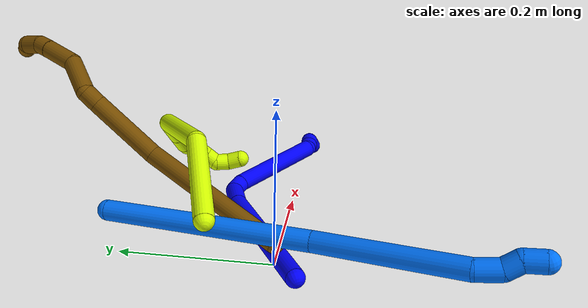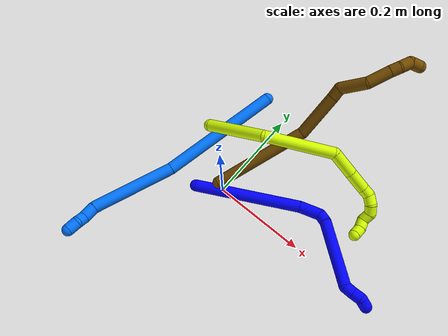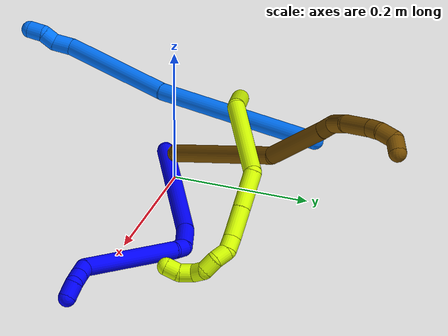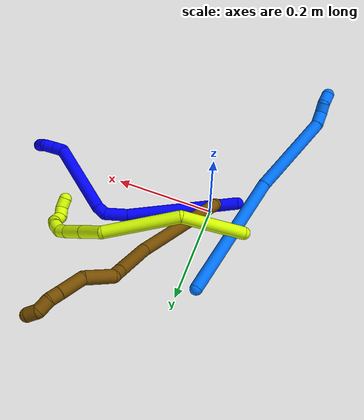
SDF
<sdf version="1.7">
 <world name="default">
  <model name="photoneo_s_sensor">
   <static>1</static>
   <pose>0 0 2 1.57079 1.57079 3.14159</pose>
   <link name="link">
    <inertial><mass>0.1</mass></inertial>
    <sensor name="sensor" type="depth">
     <update_rate>30</update_rate>
     <camera>
      <horizontal_fov>1.22</horizontal_fov>
      <image><width>1920</width><height>1200</height><format>B8G8R8</format></image>
      <clip><near>0.1</near><far>4</far></clip>
      <depth_camera><output>points</output></depth_camera>
     </camera>
     <plugin name="camera_plugin" filename="libgazebo_ros_depth_camera.so">
      <baseline>0.2</baseline>
      <alwaysOn>1</alwaysOn>
      <updateRate>0.0</updateRate>
      <cameraName>camera_ir</cameraName>
      <imageTopicName>/camera/color/image_raw</imageTopicName>
      <cameraInfoTopicName>/camera/color/camera_info</cameraInfoTopicName>
      <depthImageTopicName>/camera/depth/image_raw</depthImageTopicName>
      <depthImageCameraInfoTopicName>/camera/depth/camera_info</depthImageCameraInfoTopicName>
      <pointCloudTopicName>/camera/depth/points</pointCloudTopicName>
      <frameName>fr_optical</frameName>
      <pointCloudCutoff>0.1</pointCloudCutoff>
      <pointCloudCutoffMax>2.0</pointCloudCutoffMax>
      <distortionK1>0</distortionK1>
      <distortionK2>0</distortionK2>
      <distortionK3>0</distortionK3>
      <distortionT1>0</distortionT1>
      <distortionT2>0</distortionT2>
      <CxPrime>0</CxPrime>
      <Cx>0</Cx>
      <Cy>0</Cy>
      <focalLength>0</focalLength>
      <hackBaseline>0</hackBaseline>
     </plugin>
    </sensor>
   </link>
  </model>
  <model name="bin">
   <static>1</static>
   <link name="bottom">
    <collision name="collision-bottom">
     <pose>0 0 -0.01 0 -0 0</pose>
     <geometry><box><size>0.8 0.6 0.02</size></box></geometry>
     <surface>
      <friction><ode><mu>100</mu><mu2>100</mu2></ode></friction>
      <contact><collide_bitmask>65535</collide_bitmask></contact>
     </surface>
    </collision>
   </link>
   <link name="west_wall">
    <collision name="collision-west_wall">
     <pose>-0.41 0 0.1 0 -0 0</pose>
     <geometry><box><size>0.02 0.6 0.2</size></box></geometry>
     <surface>
      <friction><ode><mu>100</mu><mu2>100</mu2></ode></friction>
      <contact><collide_bitmask>65535</collide_bitmask></contact>
     </surface>
    </collision>
   </link>
   <link name="east_wall">
    <collision name="collision-east_wall">
     <pose>0.41 0 0.1 0 -0 0</pose>
     <geometry><box><size>0.02 0.6 0.2</size></box></geometry>
     <surface>
      <friction><ode><mu>100</mu><mu2>100</mu2></ode></friction>
      <contact><collide_bitmask>65535</collide_bitmask></contact>
     </surface>
    </collision>
   </link>
   <link name="south_wall">
    <collision name="collision-south_wall">
     <pose>0 -0.31 0.1 0 -0 0</pose>
     <geometry><box><size>0.8 0.02 0.2</size></box></geometry>
     <surface>
      <friction><ode><mu>100</mu><mu2>100</mu2></ode></friction>
      <contact><collide_bitmask>65535</collide_bitmask></contact>
     </surface>
    </collision>
   </link>
   <link name="north_wall">
    <collision name="collision-north_wall">
     <pose>0 0.31 0.1 0 -0 0</pose>
     <geometry><box><size>0.8 0.02 0.2</size></box></geometry>
     <surface>
      <friction><ode><mu>100</mu><mu2>100</mu2></ode></friction>
      <contact><collide_bitmask>65535</collide_bitmask></contact>
     </surface>
    </collision>
   </link>
  </model>
  <model name="1">
   <static>0</static>
   <link name="1">
    <collision name="collision-cylinder-e_1_1_4">
     <pose>0.038189 0.042399 0.097112 -0.411655 0.345906 -0.072916</pose>
     <geometry><cylinder><radius>0.0125</radius><length>0.225271</length></cylinder></geometry>
     <surface>
      <friction><ode><mu>1.16</mu><mu2>1.16</mu2><slip1>0</slip1><slip2>0</slip2></ode></friction>
      <contact><ode><kp>1e+06</kp><kd>1</kd><max_vel>0</max_vel><min_depth>0.001</min_depth></ode></contact>
     </surface>
    </collision>
    <visual name="visual-cylinder-e_1_1_4">
     <pose>0.038189 0.042399 0.097112 -0.411655 0.345906 -0.072916</pose>
     <geometry><cylinder><radius>0.0125</radius><length>0.225271</length></cylinder></geometry>
     <material><ambient>0 0 1 1</ambient></material>
    </visual>
    <collision name="collision-cylinder-e_2_4_5">
     <pose>0.087279 0.090617 0.213697 -0.290366 0.492292 -0.073436</pose>
     <geometry><cylinder><radius>0.0125</radius><length>0.046127</length></cylinder></geometry>
     <surface>
      <friction><ode><mu>1.16</mu><mu2>1.16</mu2><slip1>0</slip1><slip2>0</slip2></ode></friction>
      <contact><ode><kp>1e+06</kp><kd>1</kd><max_vel>0</max_vel><min_depth>0.001</min_depth></ode></contact>
     </surface>
    </collision>
    <visual name="visual-cylinder-e_2_4_5">
     <pose>0.087279 0.090617 0.213697 -0.290366 0.492292 -0.073436</pose>
     <geometry><cylinder><radius>0.0125</radius><length>0.046127</length></cylinder></geometry>
     <material><ambient>0 0 1 1</ambient></material>
    </visual>
    <collision name="collision-cylinder-e_3_5_6">
     <pose>0.105049 0.092913 0.239587 0.502256 0.753683 0.202363</pose>
     <geometry><cylinder><radius>0.0125</radius><length>0.020075</length></cylinder></geometry>
     <surface>
      <friction><ode><mu>1.16</mu><mu2>1.16</mu2><slip1>0</slip1><slip2>0</slip2></ode></friction>
      <contact><ode><kp>1e+06</kp><kd>1</kd><max_vel>0</max_vel><min_depth>0.001</min_depth></ode></contact>
     </surface>
    </collision>
    <visual name="visual-cylinder-e_3_5_6">
     <pose>0.105049 0.092913 0.239587 0.502256 0.753683 0.202363</pose>
     <geometry><cylinder><radius>0.0125</radius><length>0.020075</length></cylinder></geometry>
     <material><ambient>0 0 1 1</ambient></material>
    </visual>
    <collision name="collision-cylinder-e_4_6_7">
     <pose>0.170016 0.055069 0.27381 0.889825 0.920734 0.464363</pose>
     <geometry><cylinder><radius>0.0125</radius><length>0.145967</length></cylinder></geometry>
     <surface>
      <friction><ode><mu>1.16</mu><mu2>1.16</mu2><slip1>0</slip1><slip2>0</slip2></ode></friction>
      <contact><ode><kp>1e+06</kp><kd>1</kd><max_vel>0</max_vel><min_depth>0.001</min_depth></ode></contact>
     </surface>
    </collision>
    <visual name="visual-cylinder-e_4_6_7">
     <pose>0.170016 0.055069 0.27381 0.889825 0.920734 0.464363</pose>
     <geometry><cylinder><radius>0.0125</radius><length>0.145967</length></cylinder></geometry>
     <material><ambient>0 0 1 1</ambient></material>
    </visual>
    <collision name="collision-cylinder-e_5_7_8">
     <pose>0.235309 0.021828 0.308616 -0.153044 0.79346 -0.06422</pose>
     <geometry><cylinder><radius>0.0125</radius><length>0.020189</length></cylinder></geometry>
     <surface>
      <friction><ode><mu>1.16</mu><mu2>1.16</mu2><slip1>0</slip1><slip2>0</slip2></ode></friction>
      <contact><ode><kp>1e+06</kp><kd>1</kd><max_vel>0</max_vel><min_depth>0.001</min_depth></ode></contact>
     </surface>
    </collision>
    <visual name="visual-cylinder-e_5_7_8">
     <pose>0.235309 0.021828 0.308616 -0.153044 0.79346 -0.06422</pose>
     <geometry><cylinder><radius>0.0125</radius><length>0.020189</length></cylinder></geometry>
     <material><ambient>0 0 1 1</ambient></material>
    </visual>
    <collision name="collision-cylinder-e_6_8_9">
     <pose>0.249048 0.023933 0.323231 -0.133816 0.705291 -0.049312</pose>
     <geometry><cylinder><radius>0.0125</radius><length>0.020188</length></cylinder></geometry>
     <surface>
      <friction><ode><mu>1.16</mu><mu2>1.16</mu2><slip1>0</slip1><slip2>0</slip2></ode></friction>
      <contact><ode><kp>1e+06</kp><kd>1</kd><max_vel>0</max_vel><min_depth>0.001</min_depth></ode></contact>
     </surface>
    </collision>
    <visual name="visual-cylinder-e_6_8_9">
     <pose>0.249048 0.023933 0.323231 -0.133816 0.705291 -0.049312</pose>
     <geometry><cylinder><radius>0.0125</radius><length>0.020188</length></cylinder></geometry>
     <material><ambient>0 0 1 1</ambient></material>
    </visual>
    <collision name="collision-cylinder-e_7_9_2">
     <pose>0.265675 0.029169 0.332751 -1.14625 1.14113 -0.785351</pose>
     <geometry><cylinder><radius>0.0125</radius><length>0.022182</length></cylinder></geometry>
     <surface>
      <friction><ode><mu>1.16</mu><mu2>1.16</mu2><slip1>0</slip1><slip2>0</slip2></ode></friction>
      <contact><ode><kp>1e+06</kp><kd>1</kd><max_vel>0</max_vel><min_depth>0.001</min_depth></ode></contact>
     </surface>
    </collision>
    <visual name="visual-cylinder-e_7_9_2">
     <pose>0.265675 0.029169 0.332751 -1.14625 1.14113 -0.785351</pose>
     <geometry><cylinder><radius>0.0125</radius><length>0.022182</length></cylinder></geometry>
     <material><ambient>0 0 1 1</ambient></material>
    </visual>
    <collision name="collision-sphere-2">
     <pose>0.275758 0.033379 0.334654 0 -0 0</pose>
     <geometry><sphere><radius>0.0125</radius></sphere></geometry>
     <surface>
      <friction><ode><mu>1.16</mu><mu2>1.16</mu2><slip1>0</slip1><slip2>0</slip2></ode></friction>
      <contact><ode><kp>1e+06</kp><kd>1</kd><max_vel>0</max_vel><min_depth>0.001</min_depth></ode></contact>
     </surface>
    </collision>
    <visual name="visual-sphere-2">
     <pose>0.275758 0.033379 0.334654 0 -0 0</pose>
     <geometry><sphere><radius>0.0125</radius></sphere></geometry>
     <material><ambient>0 0 1 1</ambient></material>
    </visual>
    <collision name="collision-sphere-9">
     <pose>0.255592 0.024959 0.330848 0 -0 0</pose>
     <geometry><sphere><radius>0.0125</radius></sphere></geometry>
     <surface>
      <friction><ode><mu>1.16</mu><mu2>1.16</mu2><slip1>0</slip1><slip2>0</slip2></ode></friction>
      <contact><ode><kp>1e+06</kp><kd>1</kd><max_vel>0</max_vel><min_depth>0.001</min_depth></ode></contact>
     </surface>
    </collision>
    <visual name="visual-sphere-9">
     <pose>0.255592 0.024959 0.330848 0 -0 0</pose>
     <geometry><sphere><radius>0.0125</radius></sphere></geometry>
     <material><ambient>0 0 1 1</ambient></material>
    </visual>
    <collision name="collision-sphere-4">
     <pose>0.076378 0.084798 0.194223 0 -0 0</pose>
     <geometry><sphere><radius>0.0125</radius></sphere></geometry>
     <surface>
      <friction><ode><mu>1.16</mu><mu2>1.16</mu2><slip1>0</slip1><slip2>0</slip2></ode></friction>
      <contact><ode><kp>1e+06</kp><kd>1</kd><max_vel>0</max_vel><min_depth>0.001</min_depth></ode></contact>
     </surface>
    </collision>
    <visual name="visual-sphere-4">
     <pose>0.076378 0.084798 0.194223 0 -0 0</pose>
     <geometry><sphere><radius>0.0125</radius></sphere></geometry>
     <material><ambient>0 0 1 1</ambient></material>
    </visual>
    <collision name="collision-sphere-1">
     <geometry><sphere><radius>0.0125</radius></sphere></geometry>
     <surface>
      <friction><ode><mu>1.16</mu><mu2>1.16</mu2><slip1>0</slip1><slip2>0</slip2></ode></friction>
      <contact><ode><kp>1e+06</kp><kd>1</kd><max_vel>0</max_vel><min_depth>0.001</min_depth></ode></contact>
     </surface>
    </collision>
    <visual name="visual-sphere-1">
     <geometry><sphere><radius>0.0125</radius></sphere></geometry>
     <material><ambient>0 0 1 1</ambient></material>
    </visual>
    <collision name="collision-sphere-8">
     <pose>0.242505 0.022908 0.315614 0 -0 0</pose>
     <geometry><sphere><radius>0.0125</radius></sphere></geometry>
     <surface>
      <friction><ode><mu>1.16</mu><mu2>1.16</mu2><slip1>0</slip1><slip2>0</slip2></ode></friction>
      <contact><ode><kp>1e+06</kp><kd>1</kd><max_vel>0</max_vel><min_depth>0.001</min_depth></ode></contact>
     </surface>
    </collision>
    <visual name="visual-sphere-8">
     <pose>0.242505 0.022908 0.315614 0 -0 0</pose>
     <geometry><sphere><radius>0.0125</radius></sphere></geometry>
     <material><ambient>0 0 1 1</ambient></material>
    </visual>
    <collision name="collision-sphere-5">
     <pose>0.09818 0.096436 0.233171 0 -0 0</pose>
     <geometry><sphere><radius>0.0125</radius></sphere></geometry>
     <surface>
      <friction><ode><mu>1.16</mu><mu2>1.16</mu2><slip1>0</slip1><slip2>0</slip2></ode></friction>
      <contact><ode><kp>1e+06</kp><kd>1</kd><max_vel>0</max_vel><min_depth>0.001</min_depth></ode></contact>
     </surface>
    </collision>
    <visual name="visual-sphere-5">
     <pose>0.09818 0.096436 0.233171 0 -0 0</pose>
     <geometry><sphere><radius>0.0125</radius></sphere></geometry>
     <material><ambient>0 0 1 1</ambient></material>
    </visual>
    <collision name="collision-sphere-6">
     <pose>0.111918 0.089389 0.246002 0 -0 0</pose>
     <geometry><sphere><radius>0.0125</radius></sphere></geometry>
     <surface>
      <friction><ode><mu>1.16</mu><mu2>1.16</mu2><slip1>0</slip1><slip2>0</slip2></ode></friction>
      <contact><ode><kp>1e+06</kp><kd>1</kd><max_vel>0</max_vel><min_depth>0.001</min_depth></ode></contact>
     </surface>
    </collision>
    <visual name="visual-sphere-6">
     <pose>0.111918 0.089389 0.246002 0 -0 0</pose>
     <geometry><sphere><radius>0.0125</radius></sphere></geometry>
     <material><ambient>0 0 1 1</ambient></material>
    </visual>
    <collision name="collision-sphere-7">
     <pose>0.228114 0.020749 0.301619 0 -0 0</pose>
     <geometry><sphere><radius>0.0125</radius></sphere></geometry>
     <surface>
      <friction><ode><mu>1.16</mu><mu2>1.16</mu2><slip1>0</slip1><slip2>0</slip2></ode></friction>
      <contact><ode><kp>1e+06</kp><kd>1</kd><max_vel>0</max_vel><min_depth>0.001</min_depth></ode></contact>
     </surface>
    </collision>
    <visual name="visual-sphere-7">
     <pose>0.228114 0.020749 0.301619 0 -0 0</pose>
     <geometry><sphere><radius>0.0125</radius></sphere></geometry>
     <material><ambient>0 0 1 1</ambient></material>
    </visual>
    <inertial>
     <pose>0.110453 0.050411 0.193296 0 -0 0</pose>
     <mass>0.5</mass>
     <inertia>
      <ixx>0.001084</ixx>
      <ixy>0</ixy>
      <ixz>0</ixz>
      <iyy>0.001134</iyy>
      <iyz>0</iyz>
      <izz>-0.00076</izz>
     </inertia>
    </inertial>
   </link>
   <pose>-0.04735 -0.031825 0.011499 -0.9556 0.511173 -0.688922</pose>
  </model>
  <model name="12">
   <static>0</static>
   <link name="12">
    <collision name="collision-cylinder-e_1_1_4">
     <pose>-0.001841 -0.000166 0.1023 0.001625 -0.01799 -1.5e-05</pose>
     <geometry><cylinder><radius>0.0125</radius><length>0.204634</length></cylinder></geometry>
     <surface>
      <friction><ode><mu>1.16</mu><mu2>1.16</mu2><slip1>0</slip1><slip2>0</slip2></ode></friction>
      <contact><ode><kp>1e+06</kp><kd>1</kd><max_vel>0</max_vel><min_depth>0.001</min_depth></ode></contact>
     </surface>
    </collision>
    <visual name="visual-cylinder-e_1_1_4">
     <pose>-0.001841 -0.000166 0.1023 0.001625 -0.01799 -1.5e-05</pose>
     <geometry><cylinder><radius>0.0125</radius><length>0.204634</length></cylinder></geometry>
     <material><ambient>0.466667 0.301961 0 1</ambient></material>
    </visual>
    <collision name="collision-cylinder-e_2_4_5">
     <pose>-0.008713 0.017714 0.250512 -0.374531 -0.101643 0.019276</pose>
     <geometry><cylinder><radius>0.0125</radius><length>0.099173</length></cylinder></geometry>
     <surface>
      <friction><ode><mu>1.16</mu><mu2>1.16</mu2><slip1>0</slip1><slip2>0</slip2></ode></friction>
      <contact><ode><kp>1e+06</kp><kd>1</kd><max_vel>0</max_vel><min_depth>0.001</min_depth></ode></contact>
     </surface>
    </collision>
    <visual name="visual-cylinder-e_2_4_5">
     <pose>-0.008713 0.017714 0.250512 -0.374531 -0.101643 0.019276</pose>
     <geometry><cylinder><radius>0.0125</radius><length>0.099173</length></cylinder></geometry>
     <material><ambient>0.466667 0.301961 0 1</ambient></material>
    </visual>
    <collision name="collision-cylinder-e_3_5_6">
     <pose>-0.015068 0.040467 0.306453 -0.438634 -0.118887 0.02653</pose>
     <geometry><cylinder><radius>0.0125</radius><length>0.022315</length></cylinder></geometry>
     <surface>
      <friction><ode><mu>1.16</mu><mu2>1.16</mu2><slip1>0</slip1><slip2>0</slip2></ode></friction>
      <contact><ode><kp>1e+06</kp><kd>1</kd><max_vel>0</max_vel><min_depth>0.001</min_depth></ode></contact>
     </surface>
    </collision>
    <visual name="visual-cylinder-e_3_5_6">
     <pose>-0.015068 0.040467 0.306453 -0.438634 -0.118887 0.02653</pose>
     <geometry><cylinder><radius>0.0125</radius><length>0.022315</length></cylinder></geometry>
     <material><ambient>0.466667 0.301961 0 1</ambient></material>
    </visual>
    <collision name="collision-cylinder-e_4_6_7">
     <pose>-0.028222 0.039463 0.342372 0.217036 -0.419746 -0.046405</pose>
     <geometry><cylinder><radius>0.0125</radius><length>0.058063</length></cylinder></geometry>
     <surface>
      <friction><ode><mu>1.16</mu><mu2>1.16</mu2><slip1>0</slip1><slip2>0</slip2></ode></friction>
      <contact><ode><kp>1e+06</kp><kd>1</kd><max_vel>0</max_vel><min_depth>0.001</min_depth></ode></contact>
     </surface>
    </collision>
    <visual name="visual-cylinder-e_4_6_7">
     <pose>-0.028222 0.039463 0.342372 0.217036 -0.419746 -0.046405</pose>
     <geometry><cylinder><radius>0.0125</radius><length>0.058063</length></cylinder></geometry>
     <material><ambient>0.466667 0.301961 0 1</ambient></material>
    </visual>
    <collision name="collision-cylinder-e_5_7_8">
     <pose>-0.038898 0.031283 0.392364 0.102166 0.047627 0.002436</pose>
     <geometry><cylinder><radius>0.0125</radius><length>0.048513</length></cylinder></geometry>
     <surface>
      <friction><ode><mu>1.16</mu><mu2>1.16</mu2><slip1>0</slip1><slip2>0</slip2></ode></friction>
      <contact><ode><kp>1e+06</kp><kd>1</kd><max_vel>0</max_vel><min_depth>0.001</min_depth></ode></contact>
     </surface>
    </collision>
    <visual name="visual-cylinder-e_5_7_8">
     <pose>-0.038898 0.031283 0.392364 0.102166 0.047627 0.002436</pose>
     <geometry><cylinder><radius>0.0125</radius><length>0.048513</length></cylinder></geometry>
     <material><ambient>0.466667 0.301961 0 1</ambient></material>
    </visual>
    <collision name="collision-cylinder-e_6_8_9">
     <pose>-0.037108 0.027021 0.426375 0.178793 0.063028 0.005651</pose>
     <geometry><cylinder><radius>0.0125</radius><length>0.020177</length></cylinder></geometry>
     <surface>
      <friction><ode><mu>1.16</mu><mu2>1.16</mu2><slip1>0</slip1><slip2>0</slip2></ode></friction>
      <contact><ode><kp>1e+06</kp><kd>1</kd><max_vel>0</max_vel><min_depth>0.001</min_depth></ode></contact>
     </surface>
    </collision>
    <visual name="visual-cylinder-e_6_8_9">
     <pose>-0.037108 0.027021 0.426375 0.178793 0.063028 0.005651</pose>
     <geometry><cylinder><radius>0.0125</radius><length>0.020177</length></cylinder></geometry>
     <material><ambient>0.466667 0.301961 0 1</ambient></material>
    </visual>
    <collision name="collision-cylinder-e_7_9_10">
     <pose>-0.031565 0.021877 0.447347 0.294328 0.401459 0.060305</pose>
     <geometry><cylinder><radius>0.0125</radius><length>0.02512</length></cylinder></geometry>
     <surface>
      <friction><ode><mu>1.16</mu><mu2>1.16</mu2><slip1>0</slip1><slip2>0</slip2></ode></friction>
      <contact><ode><kp>1e+06</kp><kd>1</kd><max_vel>0</max_vel><min_depth>0.001</min_depth></ode></contact>
     </surface>
    </collision>
    <visual name="visual-cylinder-e_7_9_10">
     <pose>-0.031565 0.021877 0.447347 0.294328 0.401459 0.060305</pose>
     <geometry><cylinder><radius>0.0125</radius><length>0.02512</length></cylinder></geometry>
     <material><ambient>0.466667 0.301961 0 1</ambient></material>
    </visual>
    <collision name="collision-cylinder-e_8_10_2">
     <pose>-0.024975 0.009246 0.464082 1.02215 0.15351 0.086199</pose>
     <geometry><cylinder><radius>0.0125</radius><length>0.022005</length></cylinder></geometry>
     <surface>
      <friction><ode><mu>1.16</mu><mu2>1.16</mu2><slip1>0</slip1><slip2>0</slip2></ode></friction>
      <contact><ode><kp>1e+06</kp><kd>1</kd><max_vel>0</max_vel><min_depth>0.001</min_depth></ode></contact>
     </surface>
    </collision>
    <visual name="visual-cylinder-e_8_10_2">
     <pose>-0.024975 0.009246 0.464082 1.02215 0.15351 0.086199</pose>
     <geometry><cylinder><radius>0.0125</radius><length>0.022005</length></cylinder></geometry>
     <material><ambient>0.466667 0.301961 0 1</ambient></material>
    </visual>
    <collision name="collision-sphere-2">
     <pose>-0.023292 -3.1e-05 0.469752 0 -0 0</pose>
     <geometry><sphere><radius>0.0125</radius></sphere></geometry>
     <surface>
      <friction><ode><mu>1.16</mu><mu2>1.16</mu2><slip1>0</slip1><slip2>0</slip2></ode></friction>
      <contact><ode><kp>1e+06</kp><kd>1</kd><max_vel>0</max_vel><min_depth>0.001</min_depth></ode></contact>
     </surface>
    </collision>
    <visual name="visual-sphere-2">
     <pose>-0.023292 -3.1e-05 0.469752 0 -0 0</pose>
     <geometry><sphere><radius>0.0125</radius></sphere></geometry>
     <material><ambient>0.466667 0.301961 0 1</ambient></material>
    </visual>
    <collision name="collision-sphere-10">
     <pose>-0.026657 0.018523 0.458411 0 -0 0</pose>
     <geometry><sphere><radius>0.0125</radius></sphere></geometry>
     <surface>
      <friction><ode><mu>1.16</mu><mu2>1.16</mu2><slip1>0</slip1><slip2>0</slip2></ode></friction>
      <contact><ode><kp>1e+06</kp><kd>1</kd><max_vel>0</max_vel><min_depth>0.001</min_depth></ode></contact>
     </surface>
    </collision>
    <visual name="visual-sphere-10">
     <pose>-0.026657 0.018523 0.458411 0 -0 0</pose>
     <geometry><sphere><radius>0.0125</radius></sphere></geometry>
     <material><ambient>0.466667 0.301961 0 1</ambient></material>
    </visual>
    <collision name="collision-sphere-9">
     <pose>-0.036473 0.025231 0.436283 0 -0 0</pose>
     <geometry><sphere><radius>0.0125</radius></sphere></geometry>
     <surface>
      <friction><ode><mu>1.16</mu><mu2>1.16</mu2><slip1>0</slip1><slip2>0</slip2></ode></friction>
      <contact><ode><kp>1e+06</kp><kd>1</kd><max_vel>0</max_vel><min_depth>0.001</min_depth></ode></contact>
     </surface>
    </collision>
    <visual name="visual-sphere-9">
     <pose>-0.036473 0.025231 0.436283 0 -0 0</pose>
     <geometry><sphere><radius>0.0125</radius></sphere></geometry>
     <material><ambient>0.466667 0.301961 0 1</ambient></material>
    </visual>
    <collision name="collision-sphere-4">
     <pose>-0.003681 -0.000332 0.204601 0 -0 0</pose>
     <geometry><sphere><radius>0.0125</radius></sphere></geometry>
     <surface>
      <friction><ode><mu>1.16</mu><mu2>1.16</mu2><slip1>0</slip1><slip2>0</slip2></ode></friction>
      <contact><ode><kp>1e+06</kp><kd>1</kd><max_vel>0</max_vel><min_depth>0.001</min_depth></ode></contact>
     </surface>
    </collision>
    <visual name="visual-sphere-4">
     <pose>-0.003681 -0.000332 0.204601 0 -0 0</pose>
     <geometry><sphere><radius>0.0125</radius></sphere></geometry>
     <material><ambient>0.466667 0.301961 0 1</ambient></material>
    </visual>
    <collision name="collision-sphere-1">
     <geometry><sphere><radius>0.0125</radius></sphere></geometry>
     <surface>
      <friction><ode><mu>1.16</mu><mu2>1.16</mu2><slip1>0</slip1><slip2>0</slip2></ode></friction>
      <contact><ode><kp>1e+06</kp><kd>1</kd><max_vel>0</max_vel><min_depth>0.001</min_depth></ode></contact>
     </surface>
    </collision>
    <visual name="visual-sphere-1">
     <geometry><sphere><radius>0.0125</radius></sphere></geometry>
     <material><ambient>0.466667 0.301961 0 1</ambient></material>
    </visual>
    <collision name="collision-sphere-8">
     <pose>-0.037744 0.028812 0.416467 0 -0 0</pose>
     <geometry><sphere><radius>0.0125</radius></sphere></geometry>
     <surface>
      <friction><ode><mu>1.16</mu><mu2>1.16</mu2><slip1>0</slip1><slip2>0</slip2></ode></friction>
      <contact><ode><kp>1e+06</kp><kd>1</kd><max_vel>0</max_vel><min_depth>0.001</min_depth></ode></contact>
     </surface>
    </collision>
    <visual name="visual-sphere-8">
     <pose>-0.037744 0.028812 0.416467 0 -0 0</pose>
     <geometry><sphere><radius>0.0125</radius></sphere></geometry>
     <material><ambient>0.466667 0.301961 0 1</ambient></material>
    </visual>
    <collision name="collision-sphere-5">
     <pose>-0.013744 0.035761 0.296423 0 -0 0</pose>
     <geometry><sphere><radius>0.0125</radius></sphere></geometry>
     <surface>
      <friction><ode><mu>1.16</mu><mu2>1.16</mu2><slip1>0</slip1><slip2>0</slip2></ode></friction>
      <contact><ode><kp>1e+06</kp><kd>1</kd><max_vel>0</max_vel><min_depth>0.001</min_depth></ode></contact>
     </surface>
    </collision>
    <visual name="visual-sphere-5">
     <pose>-0.013744 0.035761 0.296423 0 -0 0</pose>
     <geometry><sphere><radius>0.0125</radius></sphere></geometry>
     <material><ambient>0.466667 0.301961 0 1</ambient></material>
    </visual>
    <collision name="collision-sphere-6">
     <pose>-0.016391 0.045172 0.316483 0 -0 0</pose>
     <geometry><sphere><radius>0.0125</radius></sphere></geometry>
     <surface>
      <friction><ode><mu>1.16</mu><mu2>1.16</mu2><slip1>0</slip1><slip2>0</slip2></ode></friction>
      <contact><ode><kp>1e+06</kp><kd>1</kd><max_vel>0</max_vel><min_depth>0.001</min_depth></ode></contact>
     </surface>
    </collision>
    <visual name="visual-sphere-6">
     <pose>-0.016391 0.045172 0.316483 0 -0 0</pose>
     <geometry><sphere><radius>0.0125</radius></sphere></geometry>
     <material><ambient>0.466667 0.301961 0 1</ambient></material>
    </visual>
    <collision name="collision-sphere-7">
     <pose>-0.040053 0.033754 0.368261 0 -0 0</pose>
     <geometry><sphere><radius>0.0125</radius></sphere></geometry>
     <surface>
      <friction><ode><mu>1.16</mu><mu2>1.16</mu2><slip1>0</slip1><slip2>0</slip2></ode></friction>
      <contact><ode><kp>1e+06</kp><kd>1</kd><max_vel>0</max_vel><min_depth>0.001</min_depth></ode></contact>
     </surface>
    </collision>
    <visual name="visual-sphere-7">
     <pose>-0.040053 0.033754 0.368261 0 -0 0</pose>
     <geometry><sphere><radius>0.0125</radius></sphere></geometry>
     <material><ambient>0.466667 0.301961 0 1</ambient></material>
    </visual>
    <inertial>
     <pose>-0.014388 0.015466 0.243166 0 -0 0</pose>
     <mass>0.5</mass>
     <inertia>
      <ixx>0.000841</ixx>
      <ixy>0</ixy>
      <ixz>0</ixz>
      <iyy>0.000838</iyy>
      <iyz>0</iyz>
      <izz>4.1e-05</izz>
     </inertia>
    </inertial>
   </link>
   <pose>-0.008921 -0.001425 0.034416 1.04968 0.788298 2.33211</pose>
  </model>
  <model name="14">
   <static>0</static>
   <link name="14">
    <collision name="collision-cylinder-e_1_1_4">
     <pose>-0.028229 -0.121043 -0.028539 1.80234 -0.22321 -0.281266</pose>
     <geometry><cylinder><radius>0.0125</radius><length>0.255052</length></cylinder></geometry>
     <surface>
      <friction><ode><mu>1.16</mu><mu2>1.16</mu2><slip1>0</slip1><slip2>0</slip2></ode></friction>
      <contact><ode><kp>1e+06</kp><kd>1</kd><max_vel>0</max_vel><min_depth>0.001</min_depth></ode></contact>
     </surface>
    </collision>
    <visual name="visual-cylinder-e_1_1_4">
     <pose>-0.028229 -0.121043 -0.028539 1.80234 -0.22321 -0.281266</pose>
     <geometry><cylinder><radius>0.0125</radius><length>0.255052</length></cylinder></geometry>
     <material><ambient>0 0.462745 1 1</ambient></material>
    </visual>
    <collision name="collision-cylinder-e_2_4_5">
     <pose>-0.087829 -0.321902 -0.070953 1.74291 -0.369445 -0.437174</pose>
     <geometry><cylinder><radius>0.0125</radius><length>0.173748</length></cylinder></geometry>
     <surface>
      <friction><ode><mu>1.16</mu><mu2>1.16</mu2><slip1>0</slip1><slip2>0</slip2></ode></friction>
      <contact><ode><kp>1e+06</kp><kd>1</kd><max_vel>0</max_vel><min_depth>0.001</min_depth></ode></contact>
     </surface>
    </collision>
    <visual name="visual-cylinder-e_2_4_5">
     <pose>-0.087829 -0.321902 -0.070953 1.74291 -0.369445 -0.437174</pose>
     <geometry><cylinder><radius>0.0125</radius><length>0.173748</length></cylinder></geometry>
     <material><ambient>0 0.462745 1 1</ambient></material>
    </visual>
    <collision name="collision-cylinder-e_3_5_6">
     <pose>-0.119565 -0.415674 -0.087007 1.72568 -0.025923 -0.030284</pose>
     <geometry><cylinder><radius>0.0125</radius><length>0.028259</length></cylinder></geometry>
     <surface>
      <friction><ode><mu>1.16</mu><mu2>1.16</mu2><slip1>0</slip1><slip2>0</slip2></ode></friction>
      <contact><ode><kp>1e+06</kp><kd>1</kd><max_vel>0</max_vel><min_depth>0.001</min_depth></ode></contact>
     </surface>
    </collision>
    <visual name="visual-cylinder-e_3_5_6">
     <pose>-0.119565 -0.415674 -0.087007 1.72568 -0.025923 -0.030284</pose>
     <geometry><cylinder><radius>0.0125</radius><length>0.028259</length></cylinder></geometry>
     <material><ambient>0 0.462745 1 1</ambient></material>
    </visual>
    <collision name="collision-cylinder-e_4_6_7">
     <pose>-0.119759 -0.439146 -0.085798 1.22883 0.01703 0.012015</pose>
     <geometry><cylinder><radius>0.0125</radius><length>0.020206</length></cylinder></geometry>
     <surface>
      <friction><ode><mu>1.16</mu><mu2>1.16</mu2><slip1>0</slip1><slip2>0</slip2></ode></friction>
      <contact><ode><kp>1e+06</kp><kd>1</kd><max_vel>0</max_vel><min_depth>0.001</min_depth></ode></contact>
     </surface>
    </collision>
    <visual name="visual-cylinder-e_4_6_7">
     <pose>-0.119759 -0.439146 -0.085798 1.22883 0.01703 0.012015</pose>
     <geometry><cylinder><radius>0.0125</radius><length>0.020206</length></cylinder></geometry>
     <material><ambient>0 0.462745 1 1</ambient></material>
    </visual>
    <collision name="collision-cylinder-e_5_7_2">
     <pose>-0.12095 -0.459775 -0.084381 1.74623 -0.120138 -0.143233</pose>
     <geometry><cylinder><radius>0.0125</radius><length>0.022735</length></cylinder></geometry>
     <surface>
      <friction><ode><mu>1.16</mu><mu2>1.16</mu2><slip1>0</slip1><slip2>0</slip2></ode></friction>
      <contact><ode><kp>1e+06</kp><kd>1</kd><max_vel>0</max_vel><min_depth>0.001</min_depth></ode></contact>
     </surface>
    </collision>
    <visual name="visual-cylinder-e_5_7_2">
     <pose>-0.12095 -0.459775 -0.084381 1.74623 -0.120138 -0.143233</pose>
     <geometry><cylinder><radius>0.0125</radius><length>0.022735</length></cylinder></geometry>
     <material><ambient>0 0.462745 1 1</ambient></material>
    </visual>
    <collision name="collision-sphere-2">
     <pose>-0.122312 -0.470887 -0.08635 0 -0 0</pose>
     <geometry><sphere><radius>0.0125</radius></sphere></geometry>
     <surface>
      <friction><ode><mu>1.16</mu><mu2>1.16</mu2><slip1>0</slip1><slip2>0</slip2></ode></friction>
      <contact><ode><kp>1e+06</kp><kd>1</kd><max_vel>0</max_vel><min_depth>0.001</min_depth></ode></contact>
     </surface>
    </collision>
    <visual name="visual-sphere-2">
     <pose>-0.122312 -0.470887 -0.08635 0 -0 0</pose>
     <geometry><sphere><radius>0.0125</radius></sphere></geometry>
     <material><ambient>0 0.462745 1 1</ambient></material>
    </visual>
    <collision name="collision-sphere-7">
     <pose>-0.119587 -0.448662 -0.082411 0 -0 0</pose>
     <geometry><sphere><radius>0.0125</radius></sphere></geometry>
     <surface>
      <friction><ode><mu>1.16</mu><mu2>1.16</mu2><slip1>0</slip1><slip2>0</slip2></ode></friction>
      <contact><ode><kp>1e+06</kp><kd>1</kd><max_vel>0</max_vel><min_depth>0.001</min_depth></ode></contact>
     </surface>
    </collision>
    <visual name="visual-sphere-7">
     <pose>-0.119587 -0.448662 -0.082411 0 -0 0</pose>
     <geometry><sphere><radius>0.0125</radius></sphere></geometry>
     <material><ambient>0 0.462745 1 1</ambient></material>
    </visual>
    <collision name="collision-sphere-6">
     <pose>-0.119931 -0.429629 -0.089186 0 -0 0</pose>
     <geometry><sphere><radius>0.0125</radius></sphere></geometry>
     <surface>
      <friction><ode><mu>1.16</mu><mu2>1.16</mu2><slip1>0</slip1><slip2>0</slip2></ode></friction>
      <contact><ode><kp>1e+06</kp><kd>1</kd><max_vel>0</max_vel><min_depth>0.001</min_depth></ode></contact>
     </surface>
    </collision>
    <visual name="visual-sphere-6">
     <pose>-0.119931 -0.429629 -0.089186 0 -0 0</pose>
     <geometry><sphere><radius>0.0125</radius></sphere></geometry>
     <material><ambient>0 0.462745 1 1</ambient></material>
    </visual>
    <collision name="collision-sphere-5">
     <pose>-0.119199 -0.401718 -0.084827 0 -0 0</pose>
     <geometry><sphere><radius>0.0125</radius></sphere></geometry>
     <surface>
      <friction><ode><mu>1.16</mu><mu2>1.16</mu2><slip1>0</slip1><slip2>0</slip2></ode></friction>
      <contact><ode><kp>1e+06</kp><kd>1</kd><max_vel>0</max_vel><min_depth>0.001</min_depth></ode></contact>
     </surface>
    </collision>
    <visual name="visual-sphere-5">
     <pose>-0.119199 -0.401718 -0.084827 0 -0 0</pose>
     <geometry><sphere><radius>0.0125</radius></sphere></geometry>
     <material><ambient>0 0.462745 1 1</ambient></material>
    </visual>
    <collision name="collision-sphere-1">
     <geometry><sphere><radius>0.0125</radius></sphere></geometry>
     <surface>
      <friction><ode><mu>1.16</mu><mu2>1.16</mu2><slip1>0</slip1><slip2>0</slip2></ode></friction>
      <contact><ode><kp>1e+06</kp><kd>1</kd><max_vel>0</max_vel><min_depth>0.001</min_depth></ode></contact>
     </surface>
    </collision>
    <visual name="visual-sphere-1">
     <geometry><sphere><radius>0.0125</radius></sphere></geometry>
     <material><ambient>0 0.462745 1 1</ambient></material>
    </visual>
    <collision name="collision-sphere-4">
     <pose>-0.056459 -0.242087 -0.057078 0 -0 0</pose>
     <geometry><sphere><radius>0.0125</radius></sphere></geometry>
     <surface>
      <friction><ode><mu>1.16</mu><mu2>1.16</mu2><slip1>0</slip1><slip2>0</slip2></ode></friction>
      <contact><ode><kp>1e+06</kp><kd>1</kd><max_vel>0</max_vel><min_depth>0.001</min_depth></ode></contact>
     </surface>
    </collision>
    <visual name="visual-sphere-4">
     <pose>-0.056459 -0.242087 -0.057078 0 -0 0</pose>
     <geometry><sphere><radius>0.0125</radius></sphere></geometry>
     <material><ambient>0 0.462745 1 1</ambient></material>
    </visual>
    <inertial>
     <pose>-0.062017 -0.23575 -0.051435 0 -0 0</pose>
     <mass>0.5</mass>
     <inertia>
      <ixx>0.001124</ixx>
      <ixy>0</ixy>
      <ixz>0</ixz>
      <iyy>-0.000815</iyy>
      <iyz>0</iyz>
      <izz>0.002198</izz>
     </inertia>
    </inertial>
   </link>
   <pose>-0.040943 0.196495 0.076652 -0.256227 -0.006458 0.026408</pose>
  </model>
  <model name="15">
   <static>0</static>
   <link name="15">
    <collision name="collision-cylinder-e_1_1_4">
     <pose>-0.009124 -0.002628 0.064171 0.040927 -0.141117 -0.002893</pose>
     <geometry><cylinder><radius>0.0125</radius><length>0.129739</length></cylinder></geometry>
     <surface>
      <friction><ode><mu>1.16</mu><mu2>1.16</mu2><slip1>0</slip1><slip2>0</slip2></ode></friction>
      <contact><ode><kp>1e+06</kp><kd>1</kd><max_vel>0</max_vel><min_depth>0.001</min_depth></ode></contact>
     </surface>
    </collision>
    <visual name="visual-cylinder-e_1_1_4">
     <pose>-0.009124 -0.002628 0.064171 0.040927 -0.141117 -0.002893</pose>
     <geometry><cylinder><radius>0.0125</radius><length>0.129739</length></cylinder></geometry>
     <material><ambient>0.835294 1 0 1</ambient></material>
    </visual>
    <collision name="collision-cylinder-e_2_4_5">
     <pose>0.004827 0.019075 0.193957 -0.355087 0.318503 -0.057622</pose>
     <geometry><cylinder><radius>0.0125</radius><length>0.147372</length></cylinder></geometry>
     <surface>
      <friction><ode><mu>1.16</mu><mu2>1.16</mu2><slip1>0</slip1><slip2>0</slip2></ode></friction>
      <contact><ode><kp>1e+06</kp><kd>1</kd><max_vel>0</max_vel><min_depth>0.001</min_depth></ode></contact>
     </surface>
    </collision>
    <visual name="visual-cylinder-e_2_4_5">
     <pose>0.004827 0.019075 0.193957 -0.355087 0.318503 -0.057622</pose>
     <geometry><cylinder><radius>0.0125</radius><length>0.147372</length></cylinder></geometry>
     <material><ambient>0.835294 1 0 1</ambient></material>
    </visual>
    <collision name="collision-cylinder-e_3_5_6">
     <pose>0.0504 0.044193 0.275813 -0.048501 0.944958 -0.024792</pose>
     <geometry><cylinder><radius>0.0125</radius><length>0.05552</length></cylinder></geometry>
     <surface>
      <friction><ode><mu>1.16</mu><mu2>1.16</mu2><slip1>0</slip1><slip2>0</slip2></ode></friction>
      <contact><ode><kp>1e+06</kp><kd>1</kd><max_vel>0</max_vel><min_depth>0.001</min_depth></ode></contact>
     </surface>
    </collision>
    <visual name="visual-cylinder-e_3_5_6">
     <pose>0.0504 0.044193 0.275813 -0.048501 0.944958 -0.024792</pose>
     <geometry><cylinder><radius>0.0125</radius><length>0.05552</length></cylinder></geometry>
     <material><ambient>0.835294 1 0 1</ambient></material>
    </visual>
    <collision name="collision-cylinder-e_4_6_7">
     <pose>0.091192 0.045558 0.305321 -0.043405 0.94291 -0.02213</pose>
     <geometry><cylinder><radius>0.0125</radius><length>0.045209</length></cylinder></geometry>
     <surface>
      <friction><ode><mu>1.16</mu><mu2>1.16</mu2><slip1>0</slip1><slip2>0</slip2></ode></friction>
      <contact><ode><kp>1e+06</kp><kd>1</kd><max_vel>0</max_vel><min_depth>0.001</min_depth></ode></contact>
     </surface>
    </collision>
    <visual name="visual-cylinder-e_4_6_7">
     <pose>0.091192 0.045558 0.305321 -0.043405 0.94291 -0.02213</pose>
     <geometry><cylinder><radius>0.0125</radius><length>0.045209</length></cylinder></geometry>
     <material><ambient>0.835294 1 0 1</ambient></material>
    </visual>
    <collision name="collision-cylinder-e_5_7_8">
     <pose>0.117103 0.04586 0.325326 0.040623 0.846143 0.018293</pose>
     <geometry><cylinder><radius>0.0125</radius><length>0.020349</length></cylinder></geometry>
     <surface>
      <friction><ode><mu>1.16</mu><mu2>1.16</mu2><slip1>0</slip1><slip2>0</slip2></ode></friction>
      <contact><ode><kp>1e+06</kp><kd>1</kd><max_vel>0</max_vel><min_depth>0.001</min_depth></ode></contact>
     </surface>
    </collision>
    <visual name="visual-cylinder-e_5_7_8">
     <pose>0.117103 0.04586 0.325326 0.040623 0.846143 0.018293</pose>
     <geometry><cylinder><radius>0.0125</radius><length>0.020349</length></cylinder></geometry>
     <material><ambient>0.835294 1 0 1</ambient></material>
    </visual>
    <collision name="collision-cylinder-e_6_8_9">
     <pose>0.131906 0.039853 0.336734 0.887377 0.771099 0.381126</pose>
     <geometry><cylinder><radius>0.0125</radius><length>0.020619</length></cylinder></geometry>
     <surface>
      <friction><ode><mu>1.16</mu><mu2>1.16</mu2><slip1>0</slip1><slip2>0</slip2></ode></friction>
      <contact><ode><kp>1e+06</kp><kd>1</kd><max_vel>0</max_vel><min_depth>0.001</min_depth></ode></contact>
     </surface>
    </collision>
    <visual name="visual-cylinder-e_6_8_9">
     <pose>0.131906 0.039853 0.336734 0.887377 0.771099 0.381126</pose>
     <geometry><cylinder><radius>0.0125</radius><length>0.020619</length></cylinder></geometry>
     <material><ambient>0.835294 1 0 1</ambient></material>
    </visual>
    <collision name="collision-cylinder-e_7_9_10">
     <pose>0.14864 0.029872 0.342394 1.34156 1.14229 0.943092</pose>
     <geometry><cylinder><radius>0.0125</radius><length>0.020996</length></cylinder></geometry>
     <surface>
      <friction><ode><mu>1.16</mu><mu2>1.16</mu2><slip1>0</slip1><slip2>0</slip2></ode></friction>
      <contact><ode><kp>1e+06</kp><kd>1</kd><max_vel>0</max_vel><min_depth>0.001</min_depth></ode></contact>
     </surface>
    </collision>
    <visual name="visual-cylinder-e_7_9_10">
     <pose>0.14864 0.029872 0.342394 1.34156 1.14229 0.943092</pose>
     <geometry><cylinder><radius>0.0125</radius><length>0.020996</length></cylinder></geometry>
     <material><ambient>0.835294 1 0 1</ambient></material>
    </visual>
    <collision name="collision-cylinder-e_8_10_11">
     <pose>0.164025 0.019686 0.337724 2.33231 0.618338 1.28163</pose>
     <geometry><cylinder><radius>0.0125</radius><length>0.020138</length></cylinder></geometry>
     <surface>
      <friction><ode><mu>1.16</mu><mu2>1.16</mu2><slip1>0</slip1><slip2>0</slip2></ode></friction>
      <contact><ode><kp>1e+06</kp><kd>1</kd><max_vel>0</max_vel><min_depth>0.001</min_depth></ode></contact>
     </surface>
    </collision>
    <visual name="visual-cylinder-e_8_10_11">
     <pose>0.164025 0.019686 0.337724 2.33231 0.618338 1.28163</pose>
     <geometry><cylinder><radius>0.0125</radius><length>0.020138</length></cylinder></geometry>
     <material><ambient>0.835294 1 0 1</ambient></material>
    </visual>
    <collision name="collision-cylinder-e_9_11_12">
     <pose>0.173223 0.004316 0.332459 1.52879 0.342045 0.328229</pose>
     <geometry><cylinder><radius>0.0125</radius><length>0.020039</length></cylinder></geometry>
     <surface>
      <friction><ode><mu>1.16</mu><mu2>1.16</mu2><slip1>0</slip1><slip2>0</slip2></ode></friction>
      <contact><ode><kp>1e+06</kp><kd>1</kd><max_vel>0</max_vel><min_depth>0.001</min_depth></ode></contact>
     </surface>
    </collision>
    <visual name="visual-cylinder-e_9_11_12">
     <pose>0.173223 0.004316 0.332459 1.52879 0.342045 0.328229</pose>
     <geometry><cylinder><radius>0.0125</radius><length>0.020039</length></cylinder></geometry>
     <material><ambient>0.835294 1 0 1</ambient></material>
    </visual>
    <collision name="collision-cylinder-e_10_12_2">
     <pose>0.176091 -0.014942 0.331022 1.75521 -0.049249 -0.059279</pose>
     <geometry><cylinder><radius>0.0125</radius><length>0.020018</length></cylinder></geometry>
     <surface>
      <friction><ode><mu>1.16</mu><mu2>1.16</mu2><slip1>0</slip1><slip2>0</slip2></ode></friction>
      <contact><ode><kp>1e+06</kp><kd>1</kd><max_vel>0</max_vel><min_depth>0.001</min_depth></ode></contact>
     </surface>
    </collision>
    <visual name="visual-cylinder-e_10_12_2">
     <pose>0.176091 -0.014942 0.331022 1.75521 -0.049249 -0.059279</pose>
     <geometry><cylinder><radius>0.0125</radius><length>0.020018</length></cylinder></geometry>
     <material><ambient>0.835294 1 0 1</ambient></material>
    </visual>
    <collision name="collision-sphere-2">
     <pose>0.175598 -0.024769 0.329189 0 -0 0</pose>
     <geometry><sphere><radius>0.0125</radius></sphere></geometry>
     <surface>
      <friction><ode><mu>1.16</mu><mu2>1.16</mu2><slip1>0</slip1><slip2>0</slip2></ode></friction>
      <contact><ode><kp>1e+06</kp><kd>1</kd><max_vel>0</max_vel><min_depth>0.001</min_depth></ode></contact>
     </surface>
    </collision>
    <visual name="visual-sphere-2">
     <pose>0.175598 -0.024769 0.329189 0 -0 0</pose>
     <geometry><sphere><radius>0.0125</radius></sphere></geometry>
     <material><ambient>0.835294 1 0 1</ambient></material>
    </visual>
    <collision name="collision-sphere-12">
     <pose>0.176584 -0.005114 0.332855 0 -0 0</pose>
     <geometry><sphere><radius>0.0125</radius></sphere></geometry>
     <surface>
      <friction><ode><mu>1.16</mu><mu2>1.16</mu2><slip1>0</slip1><slip2>0</slip2></ode></friction>
      <contact><ode><kp>1e+06</kp><kd>1</kd><max_vel>0</max_vel><min_depth>0.001</min_depth></ode></contact>
     </surface>
    </collision>
    <visual name="visual-sphere-12">
     <pose>0.176584 -0.005114 0.332855 0 -0 0</pose>
     <geometry><sphere><radius>0.0125</radius></sphere></geometry>
     <material><ambient>0.835294 1 0 1</ambient></material>
    </visual>
    <collision name="collision-sphere-11">
     <pose>0.169862 0.013747 0.332062 0 -0 0</pose>
     <geometry><sphere><radius>0.0125</radius></sphere></geometry>
     <surface>
      <friction><ode><mu>1.16</mu><mu2>1.16</mu2><slip1>0</slip1><slip2>0</slip2></ode></friction>
      <contact><ode><kp>1e+06</kp><kd>1</kd><max_vel>0</max_vel><min_depth>0.001</min_depth></ode></contact>
     </surface>
    </collision>
    <visual name="visual-sphere-11">
     <pose>0.169862 0.013747 0.332062 0 -0 0</pose>
     <geometry><sphere><radius>0.0125</radius></sphere></geometry>
     <material><ambient>0.835294 1 0 1</ambient></material>
    </visual>
    <collision name="collision-sphere-10">
     <pose>0.158189 0.025624 0.343385 0 -0 0</pose>
     <geometry><sphere><radius>0.0125</radius></sphere></geometry>
     <surface>
      <friction><ode><mu>1.16</mu><mu2>1.16</mu2><slip1>0</slip1><slip2>0</slip2></ode></friction>
      <contact><ode><kp>1e+06</kp><kd>1</kd><max_vel>0</max_vel><min_depth>0.001</min_depth></ode></contact>
     </surface>
    </collision>
    <visual name="visual-sphere-10">
     <pose>0.158189 0.025624 0.343385 0 -0 0</pose>
     <geometry><sphere><radius>0.0125</radius></sphere></geometry>
     <material><ambient>0.835294 1 0 1</ambient></material>
    </visual>
    <collision name="collision-sphere-9">
     <pose>0.139091 0.03412 0.341403 0 -0 0</pose>
     <geometry><sphere><radius>0.0125</radius></sphere></geometry>
     <surface>
      <friction><ode><mu>1.16</mu><mu2>1.16</mu2><slip1>0</slip1><slip2>0</slip2></ode></friction>
      <contact><ode><kp>1e+06</kp><kd>1</kd><max_vel>0</max_vel><min_depth>0.001</min_depth></ode></contact>
     </surface>
    </collision>
    <visual name="visual-sphere-9">
     <pose>0.139091 0.03412 0.341403 0 -0 0</pose>
     <geometry><sphere><radius>0.0125</radius></sphere></geometry>
     <material><ambient>0.835294 1 0 1</ambient></material>
    </visual>
    <collision name="collision-sphere-4">
     <pose>-0.018248 -0.005256 0.128342 0 -0 0</pose>
     <geometry><sphere><radius>0.0125</radius></sphere></geometry>
     <surface>
      <friction><ode><mu>1.16</mu><mu2>1.16</mu2><slip1>0</slip1><slip2>0</slip2></ode></friction>
      <contact><ode><kp>1e+06</kp><kd>1</kd><max_vel>0</max_vel><min_depth>0.001</min_depth></ode></contact>
     </surface>
    </collision>
    <visual name="visual-sphere-4">
     <pose>-0.018248 -0.005256 0.128342 0 -0 0</pose>
     <geometry><sphere><radius>0.0125</radius></sphere></geometry>
     <material><ambient>0.835294 1 0 1</ambient></material>
    </visual>
    <collision name="collision-sphere-1">
     <geometry><sphere><radius>0.0125</radius></sphere></geometry>
     <surface>
      <friction><ode><mu>1.16</mu><mu2>1.16</mu2><slip1>0</slip1><slip2>0</slip2></ode></friction>
      <contact><ode><kp>1e+06</kp><kd>1</kd><max_vel>0</max_vel><min_depth>0.001</min_depth></ode></contact>
     </surface>
    </collision>
    <visual name="visual-sphere-1">
     <geometry><sphere><radius>0.0125</radius></sphere></geometry>
     <material><ambient>0.835294 1 0 1</ambient></material>
    </visual>
    <collision name="collision-sphere-8">
     <pose>0.124721 0.045586 0.332065 0 -0 0</pose>
     <geometry><sphere><radius>0.0125</radius></sphere></geometry>
     <surface>
      <friction><ode><mu>1.16</mu><mu2>1.16</mu2><slip1>0</slip1><slip2>0</slip2></ode></friction>
      <contact><ode><kp>1e+06</kp><kd>1</kd><max_vel>0</max_vel><min_depth>0.001</min_depth></ode></contact>
     </surface>
    </collision>
    <visual name="visual-sphere-8">
     <pose>0.124721 0.045586 0.332065 0 -0 0</pose>
     <geometry><sphere><radius>0.0125</radius></sphere></geometry>
     <material><ambient>0.835294 1 0 1</ambient></material>
    </visual>
    <collision name="collision-sphere-5">
     <pose>0.027901 0.043405 0.259571 0 -0 0</pose>
     <geometry><sphere><radius>0.0125</radius></sphere></geometry>
     <surface>
      <friction><ode><mu>1.16</mu><mu2>1.16</mu2><slip1>0</slip1><slip2>0</slip2></ode></friction>
      <contact><ode><kp>1e+06</kp><kd>1</kd><max_vel>0</max_vel><min_depth>0.001</min_depth></ode></contact>
     </surface>
    </collision>
    <visual name="visual-sphere-5">
     <pose>0.027901 0.043405 0.259571 0 -0 0</pose>
     <geometry><sphere><radius>0.0125</radius></sphere></geometry>
     <material><ambient>0.835294 1 0 1</ambient></material>
    </visual>
    <collision name="collision-sphere-6">
     <pose>0.072899 0.044981 0.292055 0 -0 0</pose>
     <geometry><sphere><radius>0.0125</radius></sphere></geometry>
     <surface>
      <friction><ode><mu>1.16</mu><mu2>1.16</mu2><slip1>0</slip1><slip2>0</slip2></ode></friction>
      <contact><ode><kp>1e+06</kp><kd>1</kd><max_vel>0</max_vel><min_depth>0.001</min_depth></ode></contact>
     </surface>
    </collision>
    <visual name="visual-sphere-6">
     <pose>0.072899 0.044981 0.292055 0 -0 0</pose>
     <geometry><sphere><radius>0.0125</radius></sphere></geometry>
     <material><ambient>0.835294 1 0 1</ambient></material>
    </visual>
    <collision name="collision-sphere-7">
     <pose>0.109485 0.046134 0.318587 0 -0 0</pose>
     <geometry><sphere><radius>0.0125</radius></sphere></geometry>
     <surface>
      <friction><ode><mu>1.16</mu><mu2>1.16</mu2><slip1>0</slip1><slip2>0</slip2></ode></friction>
      <contact><ode><kp>1e+06</kp><kd>1</kd><max_vel>0</max_vel><min_depth>0.001</min_depth></ode></contact>
     </surface>
    </collision>
    <visual name="visual-sphere-7">
     <pose>0.109485 0.046134 0.318587 0 -0 0</pose>
     <geometry><sphere><radius>0.0125</radius></sphere></geometry>
     <material><ambient>0.835294 1 0 1</ambient></material>
    </visual>
    <inertial>
     <pose>0.049943 0.019099 0.213735 0 -0 0</pose>
     <mass>0.5</mass>
     <inertia>
      <ixx>0.000465</ixx>
      <ixy>0</ixy>
      <ixz>0</ixz>
      <iyy>0.000459</iyy>
      <iyz>0</iyz>
      <izz>-0.000137</izz>
     </inertia>
    </inertial>
   </link>
   <pose>-0.088229 0.067299 0.095872 -0.866982 1.14899 -0.624756</pose>
  </model>
 </world>
</sdf>
